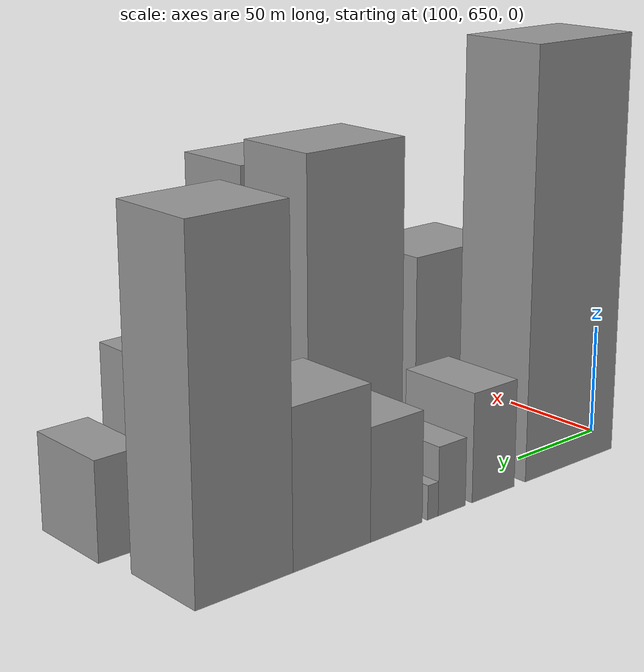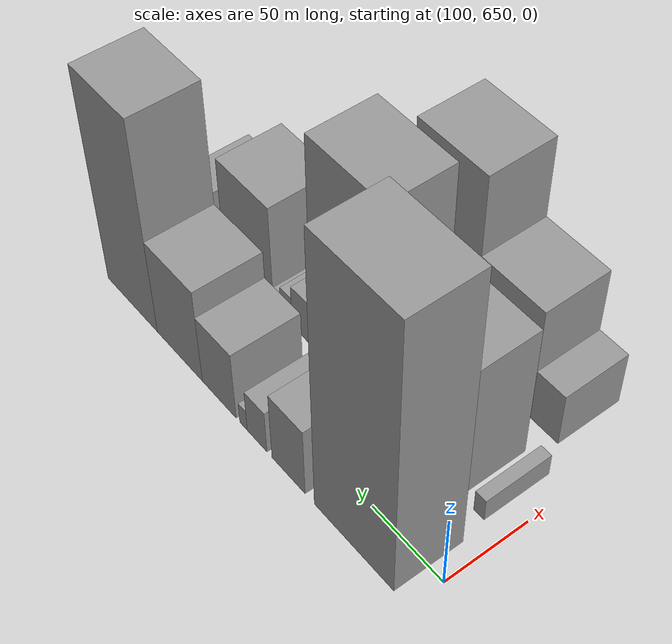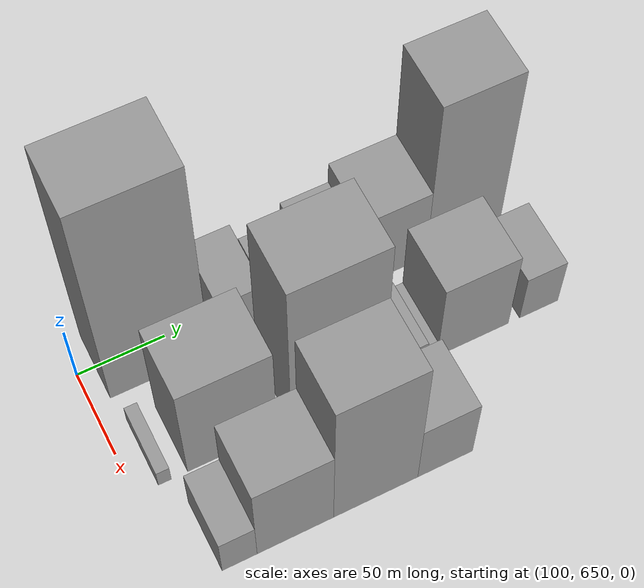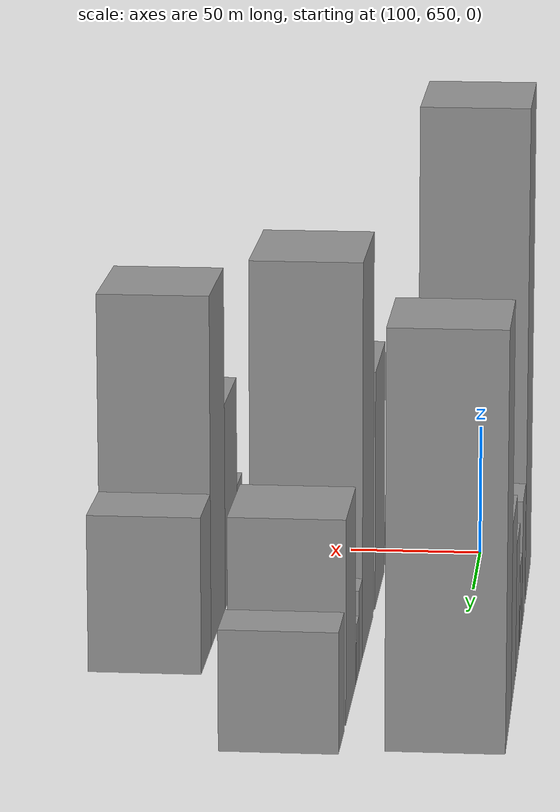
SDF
<sdf version="1.6">
 <world name="default">
  <model name="building_48">
   <static>1</static>
   <pose>100.0000 688.8417 0 0.000000 0.000000 0.000000</pose>
   <link name="link">
    <pose>0 0 93.00 0 0 0</pose>
    <collision name="collision"><geometry><box><size>40.0000 57.0945 186.0000</size></box></geometry></collision>
    <visual name="visual">
     <cast_shadows>0</cast_shadows>
     <geometry><box><size>40.0000 57.0945 186.0000</size></box></geometry>
     <material>
      <script>
       <uri>model://grey_wall/materials/scripts</uri>
       <uri>model://grey_wall/materials/textures</uri>
       <name>vrc/grey_wall</name>
      </script>
     </material>
    </visual>
   </link>
  </model>
  <model name="building_49">
   <static>1</static>
   <pose>100.0000 737.1750 0 0.000000 0.000000 0.000000</pose>
   <link name="link">
    <pose>0 0 24.00 0 0 0</pose>
    <collision name="collision"><geometry><box><size>40.0000 25.5722 48.0000</size></box></geometry></collision>
    <visual name="visual">
     <cast_shadows>0</cast_shadows>
     <geometry><box><size>40.0000 25.5722 48.0000</size></box></geometry>
     <material>
      <script>
       <uri>model://grey_wall/materials/scripts</uri>
       <uri>model://grey_wall/materials/textures</uri>
       <name>vrc/grey_wall</name>
      </script>
     </material>
    </visual>
   </link>
  </model>
  <model name="building_50">
   <static>1</static>
   <pose>100.0000 761.8153 0 0.000000 0.000000 0.000000</pose>
   <link name="link">
    <pose>0 0 15.00 0 0 0</pose>
    <collision name="collision"><geometry><box><size>40.0000 15.7083 30.0000</size></box></geometry></collision>
    <visual name="visual">
     <cast_shadows>0</cast_shadows>
     <geometry><box><size>40.0000 15.7083 30.0000</size></box></geometry>
     <material>
      <script>
       <uri>model://grey_wall/materials/scripts</uri>
       <uri>model://grey_wall/materials/textures</uri>
       <name>vrc/grey_wall</name>
      </script>
     </material>
    </visual>
   </link>
  </model>
  <model name="building_51">
   <static>1</static>
   <pose>100.0000 772.6809 0 0.000000 0.000000 0.000000</pose>
   <link name="link">
    <pose>0 0 7.50 0 0 0</pose>
    <collision name="collision"><geometry><box><size>40.0000 6.0230 15.0000</size></box></geometry></collision>
    <visual name="visual">
     <cast_shadows>0</cast_shadows>
     <geometry><box><size>40.0000 6.0230 15.0000</size></box></geometry>
     <material>
      <script>
       <uri>model://grey_wall/materials/scripts</uri>
       <uri>model://grey_wall/materials/textures</uri>
       <name>vrc/grey_wall</name>
      </script>
     </material>
    </visual>
   </link>
  </model>
  <model name="building_52">
   <static>1</static>
   <pose>100.0000 792.7861 0 0.000000 0.000000 0.000000</pose>
   <link name="link">
    <pose>0 0 24.00 0 0 0</pose>
    <collision name="collision"><geometry><box><size>40.0000 28.1875 48.0000</size></box></geometry></collision>
    <visual name="visual">
     <cast_shadows>0</cast_shadows>
     <geometry><box><size>40.0000 28.1875 48.0000</size></box></geometry>
     <material>
      <script>
       <uri>model://grey_wall/materials/scripts</uri>
       <uri>model://grey_wall/materials/textures</uri>
       <name>vrc/grey_wall</name>
      </script>
     </material>
    </visual>
   </link>
  </model>
  <model name="building_53">
   <static>1</static>
   <pose>100.0000 826.5708 0 0.000000 0.000000 0.000000</pose>
   <link name="link">
    <pose>0 0 33.00 0 0 0</pose>
    <collision name="collision"><geometry><box><size>40.0000 39.3819 66.0000</size></box></geometry></collision>
    <visual name="visual">
     <cast_shadows>0</cast_shadows>
     <geometry><box><size>40.0000 39.3819 66.0000</size></box></geometry>
     <material>
      <script>
       <uri>model://grey_wall/materials/scripts</uri>
       <uri>model://grey_wall/materials/textures</uri>
       <name>vrc/grey_wall</name>
      </script>
     </material>
    </visual>
   </link>
  </model>
  <model name="building_54">
   <static>1</static>
   <pose>100.0000 869.0312 0 0.000000 0.000000 0.000000</pose>
   <link name="link">
    <pose>0 0 72.00 0 0 0</pose>
    <collision name="collision"><geometry><box><size>40.0000 45.5390 144.0000</size></box></geometry></collision>
    <visual name="visual">
     <cast_shadows>0</cast_shadows>
     <geometry><box><size>40.0000 45.5390 144.0000</size></box></geometry>
     <material>
      <script>
       <uri>model://grey_wall/materials/scripts</uri>
       <uri>model://grey_wall/materials/textures</uri>
       <name>vrc/grey_wall</name>
      </script>
     </material>
    </visual>
   </link>
  </model>
  <model name="building_96">
   <static>1</static>
   <pose>155.0000 666.5414 0 0.000000 0.000000 0.000000</pose>
   <link name="link">
    <pose>0 0 7.50 0 0 0</pose>
    <collision name="collision"><geometry><box><size>40.0000 7.2163 15.0000</size></box></geometry></collision>
    <visual name="visual">
     <cast_shadows>0</cast_shadows>
     <geometry><box><size>40.0000 7.2163 15.0000</size></box></geometry>
     <material>
      <script>
       <uri>model://grey_wall/materials/scripts</uri>
       <uri>model://grey_wall/materials/textures</uri>
       <name>vrc/grey_wall</name>
      </script>
     </material>
    </visual>
   </link>
  </model>
  <model name="building_97">
   <static>1</static>
   <pose>155.0000 704.4203 0 0.000000 0.000000 0.000000</pose>
   <link name="link">
    <pose>0 0 45.00 0 0 0</pose>
    <collision name="collision"><geometry><box><size>40.0000 50.5415 90.0000</size></box></geometry></collision>
    <visual name="visual">
     <cast_shadows>0</cast_shadows>
     <geometry><box><size>40.0000 50.5415 90.0000</size></box></geometry>
     <material>
      <script>
       <uri>model://grey_wall/materials/scripts</uri>
       <uri>model://grey_wall/materials/textures</uri>
       <name>vrc/grey_wall</name>
      </script>
     </material>
    </visual>
   </link>
  </model>
  <model name="building_98">
   <static>1</static>
   <pose>155.0000 764.6695 0 0.000000 0.000000 0.000000</pose>
   <link name="link">
    <pose>0 0 72.00 0 0 0</pose>
    <collision name="collision"><geometry><box><size>40.0000 53.9569 144.0000</size></box></geometry></collision>
    <visual name="visual">
     <cast_shadows>0</cast_shadows>
     <geometry><box><size>40.0000 53.9569 144.0000</size></box></geometry>
     <material>
      <script>
       <uri>model://grey_wall/materials/scripts</uri>
       <uri>model://grey_wall/materials/textures</uri>
       <name>vrc/grey_wall</name>
      </script>
     </material>
    </visual>
   </link>
  </model>
  <model name="building_99">
   <static>1</static>
   <pose>155.0000 799.6463 0 0.000000 0.000000 0.000000</pose>
   <link name="link">
    <pose>0 0 15.00 0 0 0</pose>
    <collision name="collision"><geometry><box><size>40.0000 15.9967 30.0000</size></box></geometry></collision>
    <visual name="visual">
     <cast_shadows>0</cast_shadows>
     <geometry><box><size>40.0000 15.9967 30.0000</size></box></geometry>
     <material>
      <script>
       <uri>model://grey_wall/materials/scripts</uri>
       <uri>model://grey_wall/materials/textures</uri>
       <name>vrc/grey_wall</name>
      </script>
     </material>
    </visual>
   </link>
  </model>
  <model name="building_100">
   <static>1</static>
   <pose>155.0000 812.3018 0 0.000000 0.000000 0.000000</pose>
   <link name="link">
    <pose>0 0 10.50 0 0 0</pose>
    <collision name="collision"><geometry><box><size>40.0000 9.3143 21.0000</size></box></geometry></collision>
    <visual name="visual">
     <cast_shadows>0</cast_shadows>
     <geometry><box><size>40.0000 9.3143 21.0000</size></box></geometry>
     <material>
      <script>
       <uri>model://grey_wall/materials/scripts</uri>
       <uri>model://grey_wall/materials/textures</uri>
       <name>vrc/grey_wall</name>
      </script>
     </material>
    </visual>
   </link>
  </model>
  <model name="building_101">
   <static>1</static>
   <pose>155.0000 820.0892 0 0.000000 0.000000 0.000000</pose>
   <link name="link">
    <pose>0 0 7.50 0 0 0</pose>
    <collision name="collision"><geometry><box><size>40.0000 6.2605 15.0000</size></box></geometry></collision>
    <visual name="visual">
     <cast_shadows>0</cast_shadows>
     <geometry><box><size>40.0000 6.2605 15.0000</size></box></geometry>
     <material>
      <script>
       <uri>model://grey_wall/materials/scripts</uri>
       <uri>model://grey_wall/materials/textures</uri>
       <name>vrc/grey_wall</name>
      </script>
     </material>
    </visual>
   </link>
  </model>
  <model name="building_102">
   <static>1</static>
   <pose>155.0000 844.6167 0 0.000000 0.000000 0.000000</pose>
   <link name="link">
    <pose>0 0 36.00 0 0 0</pose>
    <collision name="collision"><geometry><box><size>40.0000 42.7946 72.0000</size></box></geometry></collision>
    <visual name="visual">
     <cast_shadows>0</cast_shadows>
     <geometry><box><size>40.0000 42.7946 72.0000</size></box></geometry>
     <material>
      <script>
       <uri>model://grey_wall/materials/scripts</uri>
       <uri>model://grey_wall/materials/textures</uri>
       <name>vrc/grey_wall</name>
      </script>
     </material>
    </visual>
   </link>
  </model>
  <model name="building_103">
   <static>1</static>
   <pose>155.0000 884.6997 0 0.000000 0.000000 0.000000</pose>
   <link name="link">
    <pose>0 0 21.00 0 0 0</pose>
    <collision name="collision"><geometry><box><size>40.0000 23.3714 42.0000</size></box></geometry></collision>
    <visual name="visual">
     <cast_shadows>0</cast_shadows>
     <geometry><box><size>40.0000 23.3714 42.0000</size></box></geometry>
     <material>
      <script>
       <uri>model://grey_wall/materials/scripts</uri>
       <uri>model://grey_wall/materials/textures</uri>
       <name>vrc/grey_wall</name>
      </script>
     </material>
    </visual>
   </link>
  </model>
  <model name="building_151">
   <static>1</static>
   <pose>210.0000 682.2762 0 0.000000 0.000000 0.000000</pose>
   <link name="link">
    <pose>0 0 18.00 0 0 0</pose>
    <collision name="collision"><geometry><box><size>40.0000 19.1256 36.0000</size></box></geometry></collision>
    <visual name="visual">
     <cast_shadows>0</cast_shadows>
     <geometry><box><size>40.0000 19.1256 36.0000</size></box></geometry>
     <material>
      <script>
       <uri>model://grey_wall/materials/scripts</uri>
       <uri>model://grey_wall/materials/textures</uri>
       <name>vrc/grey_wall</name>
      </script>
     </material>
    </visual>
   </link>
  </model>
  <model name="building_152">
   <static>1</static>
   <pose>210.0000 713.0487 0 0.000000 0.000000 0.000000</pose>
   <link name="link">
    <pose>0 0 39.00 0 0 0</pose>
    <collision name="collision"><geometry><box><size>40.0000 42.4194 78.0000</size></box></geometry></collision>
    <visual name="visual">
     <cast_shadows>0</cast_shadows>
     <geometry><box><size>40.0000 42.4194 78.0000</size></box></geometry>
     <material>
      <script>
       <uri>model://grey_wall/materials/scripts</uri>
       <uri>model://grey_wall/materials/textures</uri>
       <name>vrc/grey_wall</name>
      </script>
     </material>
    </visual>
   </link>
  </model>
  <model name="building_153">
   <static>1</static>
   <pose>210.0000 758.1493 0 0.000000 0.000000 0.000000</pose>
   <link name="link">
    <pose>0 0 64.50 0 0 0</pose>
    <collision name="collision"><geometry><box><size>40.0000 47.7817 129.0000</size></box></geometry></collision>
    <visual name="visual">
     <cast_shadows>0</cast_shadows>
     <geometry><box><size>40.0000 47.7817 129.0000</size></box></geometry>
     <material>
      <script>
       <uri>model://grey_wall/materials/scripts</uri>
       <uri>model://grey_wall/materials/textures</uri>
       <name>vrc/grey_wall</name>
      </script>
     </material>
    </visual>
   </link>
  </model>
  <model name="building_154">
   <static>1</static>
   <pose>210.0000 797.8717 0 0.000000 0.000000 0.000000</pose>
   <link name="link">
    <pose>0 0 28.50 0 0 0</pose>
    <collision name="collision"><geometry><box><size>40.0000 31.6632 57.0000</size></box></geometry></collision>
    <visual name="visual">
     <cast_shadows>0</cast_shadows>
     <geometry><box><size>40.0000 31.6632 57.0000</size></box></geometry>
     <material>
      <script>
       <uri>model://grey_wall/materials/scripts</uri>
       <uri>model://grey_wall/materials/textures</uri>
       <name>vrc/grey_wall</name>
      </script>
     </material>
    </visual>
   </link>
  </model>
 </world>
</sdf>
